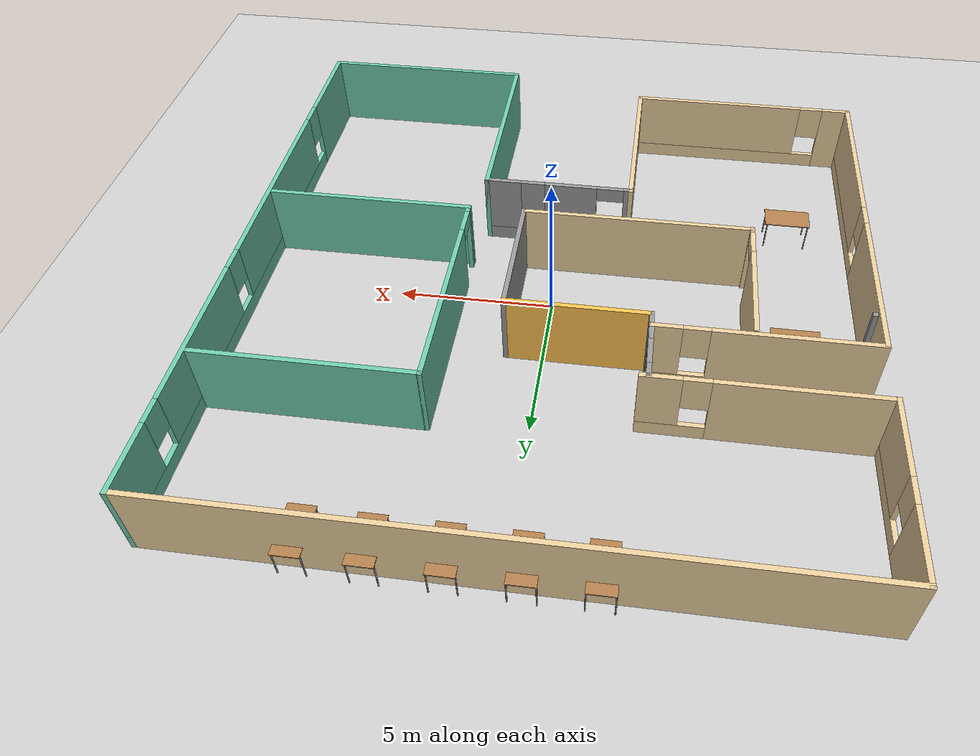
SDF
<sdf version="1.6">
 <world name="default">
  <light name="sun" type="directional">
   <pose>0 0 10 0 -0 0</pose>
   <diffuse>0.8 0.8 0.8 1</diffuse>
   <specular>0.2 0.2 0.2 1</specular>
   <attenuation>
    <range>1000</range>
    <constant>0.9</constant>
    <linear>0.01</linear>
    <quadratic>0.001</quadratic>
   </attenuation>
   <direction>-0.5 0.1 -0.9</direction>
  </light>
  <model name="ground_plane">
   <static>1</static>
   <link name="link">
    <collision name="collision">
     <geometry><plane><normal>0 0 1</normal><size>100 100</size></plane></geometry>
     <surface><friction><ode><mu>100</mu><mu2>50</mu2></ode></friction></surface>
    </collision>
    <visual name="visual">
     <cast_shadows>0</cast_shadows>
     <geometry><plane><normal>0 0 1</normal><size>100 100</size></plane></geometry>
     <material>
      <script><uri>file://media/materials/scripts/gazebo.material</uri><name>Gazebo/Grey</name></script>
     </material>
    </visual>
   </link>
  </model>
  <gravity>0 0 -9.8</gravity>
  <magnetic_field>6e-06 2.3e-05 -4.2e-05</magnetic_field>
  <atmosphere type="adiabatic"/>
  <physics name="default_physics" default="0" type="ode">
   <max_step_size>0.001</max_step_size>
   <real_time_factor>1</real_time_factor>
   <real_time_update_rate>1000</real_time_update_rate>
  </physics>
  <scene><ambient>0.4 0.4 0.4 1</ambient><background>0.7 0.7 0.7 1</background><shadows>1</shadows></scene>
  <spherical_coordinates>
   <surface_model>EARTH_WGS84</surface_model>
   <latitude_deg>0</latitude_deg>
   <longitude_deg>0</longitude_deg>
   <elevation>0</elevation>
   <heading_deg>0</heading_deg>
  </spherical_coordinates>
  <model name="table_clone">
   <static>1</static>
   <link name="link">
    <collision name="surface">
     <pose>0 0 1 0 -0 0</pose>
     <geometry><box><size>1.5 0.8 0.03</size></box></geometry>
     <surface><friction><ode><mu>0.6</mu><mu2>0.6</mu2></ode></friction></surface>
    </collision>
    <visual name="visual1">
     <pose>0 0 1 0 -0 0</pose>
     <geometry><box><size>1.5 0.8 0.03</size></box></geometry>
     <material>
      <script><uri>file://media/materials/scripts/gazebo.material</uri><name>Gazebo/Wood</name></script>
     </material>
    </visual>
    <collision name="front_left_leg">
     <pose>0.68 0.38 0.5 0 -0 0</pose>
     <geometry><cylinder><radius>0.02</radius><length>1</length></cylinder></geometry>
    </collision>
    <visual name="front_left_leg">
     <pose>0.68 0.38 0.5 0 -0 0</pose>
     <geometry><cylinder><radius>0.02</radius><length>1</length></cylinder></geometry>
     <material>
      <script><uri>file://media/materials/scripts/gazebo.material</uri><name>Gazebo/Grey</name></script>
     </material>
    </visual>
    <collision name="front_right_leg">
     <pose>0.68 -0.38 0.5 0 -0 0</pose>
     <geometry><cylinder><radius>0.02</radius><length>1</length></cylinder></geometry>
    </collision>
    <visual name="front_right_leg">
     <pose>0.68 -0.38 0.5 0 -0 0</pose>
     <geometry><cylinder><radius>0.02</radius><length>1</length></cylinder></geometry>
     <material>
      <script><uri>file://media/materials/scripts/gazebo.material</uri><name>Gazebo/Grey</name></script>
     </material>
    </visual>
    <collision name="back_right_leg">
     <pose>-0.68 -0.38 0.5 0 -0 0</pose>
     <geometry><cylinder><radius>0.02</radius><length>1</length></cylinder></geometry>
    </collision>
    <visual name="back_right_leg">
     <pose>-0.68 -0.38 0.5 0 -0 0</pose>
     <geometry><cylinder><radius>0.02</radius><length>1</length></cylinder></geometry>
     <material>
      <script><uri>file://media/materials/scripts/gazebo.material</uri><name>Gazebo/Grey</name></script>
     </material>
    </visual>
    <collision name="back_left_leg">
     <pose>-0.68 0.38 0.5 0 -0 0</pose>
     <geometry><cylinder><radius>0.02</radius><length>1</length></cylinder></geometry>
    </collision>
    <visual name="back_left_leg">
     <pose>-0.68 0.38 0.5 0 -0 0</pose>
     <geometry><cylinder><radius>0.02</radius><length>1</length></cylinder></geometry>
     <material>
      <script><uri>file://media/materials/scripts/gazebo.material</uri><name>Gazebo/Grey</name></script>
     </material>
    </visual>
   </link>
   <pose>5.36982 9.5628 0 0 0 -1.57</pose>
  </model>
  <model name="table_clone_0">
   <static>1</static>
   <link name="link">
    <collision name="surface">
     <pose>0 0 1 0 -0 0</pose>
     <geometry><box><size>1.5 0.8 0.03</size></box></geometry>
     <surface><friction><ode><mu>0.6</mu><mu2>0.6</mu2></ode></friction></surface>
    </collision>
    <visual name="visual1">
     <pose>0 0 1 0 -0 0</pose>
     <geometry><box><size>1.5 0.8 0.03</size></box></geometry>
     <material>
      <script><uri>file://media/materials/scripts/gazebo.material</uri><name>Gazebo/Wood</name></script>
     </material>
    </visual>
    <collision name="front_left_leg">
     <pose>0.68 0.38 0.5 0 -0 0</pose>
     <geometry><cylinder><radius>0.02</radius><length>1</length></cylinder></geometry>
    </collision>
    <visual name="front_left_leg">
     <pose>0.68 0.38 0.5 0 -0 0</pose>
     <geometry><cylinder><radius>0.02</radius><length>1</length></cylinder></geometry>
     <material>
      <script><uri>file://media/materials/scripts/gazebo.material</uri><name>Gazebo/Grey</name></script>
     </material>
    </visual>
    <collision name="front_right_leg">
     <pose>0.68 -0.38 0.5 0 -0 0</pose>
     <geometry><cylinder><radius>0.02</radius><length>1</length></cylinder></geometry>
    </collision>
    <visual name="front_right_leg">
     <pose>0.68 -0.38 0.5 0 -0 0</pose>
     <geometry><cylinder><radius>0.02</radius><length>1</length></cylinder></geometry>
     <material>
      <script><uri>file://media/materials/scripts/gazebo.material</uri><name>Gazebo/Grey</name></script>
     </material>
    </visual>
    <collision name="back_right_leg">
     <pose>-0.68 -0.38 0.5 0 -0 0</pose>
     <geometry><cylinder><radius>0.02</radius><length>1</length></cylinder></geometry>
    </collision>
    <visual name="back_right_leg">
     <pose>-0.68 -0.38 0.5 0 -0 0</pose>
     <geometry><cylinder><radius>0.02</radius><length>1</length></cylinder></geometry>
     <material>
      <script><uri>file://media/materials/scripts/gazebo.material</uri><name>Gazebo/Grey</name></script>
     </material>
    </visual>
    <collision name="back_left_leg">
     <pose>-0.68 0.38 0.5 0 -0 0</pose>
     <geometry><cylinder><radius>0.02</radius><length>1</length></cylinder></geometry>
    </collision>
    <visual name="back_left_leg">
     <pose>-0.68 0.38 0.5 0 -0 0</pose>
     <geometry><cylinder><radius>0.02</radius><length>1</length></cylinder></geometry>
     <material>
      <script><uri>file://media/materials/scripts/gazebo.material</uri><name>Gazebo/Grey</name></script>
     </material>
    </visual>
   </link>
   <pose>3.47417 9.59504 0 0 0 -1.57</pose>
  </model>
  <model name="table_clone_1">
   <static>1</static>
   <link name="link">
    <collision name="surface">
     <pose>0 0 1 0 -0 0</pose>
     <geometry><box><size>1.5 0.8 0.03</size></box></geometry>
     <surface><friction><ode><mu>0.6</mu><mu2>0.6</mu2></ode></friction></surface>
    </collision>
    <visual name="visual1">
     <pose>0 0 1 0 -0 0</pose>
     <geometry><box><size>1.5 0.8 0.03</size></box></geometry>
     <material>
      <script><uri>file://media/materials/scripts/gazebo.material</uri><name>Gazebo/Wood</name></script>
     </material>
    </visual>
    <collision name="front_left_leg">
     <pose>0.68 0.38 0.5 0 -0 0</pose>
     <geometry><cylinder><radius>0.02</radius><length>1</length></cylinder></geometry>
    </collision>
    <visual name="front_left_leg">
     <pose>0.68 0.38 0.5 0 -0 0</pose>
     <geometry><cylinder><radius>0.02</radius><length>1</length></cylinder></geometry>
     <material>
      <script><uri>file://media/materials/scripts/gazebo.material</uri><name>Gazebo/Grey</name></script>
     </material>
    </visual>
    <collision name="front_right_leg">
     <pose>0.68 -0.38 0.5 0 -0 0</pose>
     <geometry><cylinder><radius>0.02</radius><length>1</length></cylinder></geometry>
    </collision>
    <visual name="front_right_leg">
     <pose>0.68 -0.38 0.5 0 -0 0</pose>
     <geometry><cylinder><radius>0.02</radius><length>1</length></cylinder></geometry>
     <material>
      <script><uri>file://media/materials/scripts/gazebo.material</uri><name>Gazebo/Grey</name></script>
     </material>
    </visual>
    <collision name="back_right_leg">
     <pose>-0.68 -0.38 0.5 0 -0 0</pose>
     <geometry><cylinder><radius>0.02</radius><length>1</length></cylinder></geometry>
    </collision>
    <visual name="back_right_leg">
     <pose>-0.68 -0.38 0.5 0 -0 0</pose>
     <geometry><cylinder><radius>0.02</radius><length>1</length></cylinder></geometry>
     <material>
      <script><uri>file://media/materials/scripts/gazebo.material</uri><name>Gazebo/Grey</name></script>
     </material>
    </visual>
    <collision name="back_left_leg">
     <pose>-0.68 0.38 0.5 0 -0 0</pose>
     <geometry><cylinder><radius>0.02</radius><length>1</length></cylinder></geometry>
    </collision>
    <visual name="back_left_leg">
     <pose>-0.68 0.38 0.5 0 -0 0</pose>
     <geometry><cylinder><radius>0.02</radius><length>1</length></cylinder></geometry>
     <material>
      <script><uri>file://media/materials/scripts/gazebo.material</uri><name>Gazebo/Grey</name></script>
     </material>
    </visual>
   </link>
   <pose>1.43565 9.59938 0 0 0 -1.57</pose>
  </model>
  <model name="table_clone_2">
   <static>1</static>
   <link name="link">
    <collision name="surface">
     <pose>0 0 1 0 -0 0</pose>
     <geometry><box><size>1.5 0.8 0.03</size></box></geometry>
     <surface><friction><ode><mu>0.6</mu><mu2>0.6</mu2></ode></friction></surface>
    </collision>
    <visual name="visual1">
     <pose>0 0 1 0 -0 0</pose>
     <geometry><box><size>1.5 0.8 0.03</size></box></geometry>
     <material>
      <script><uri>file://media/materials/scripts/gazebo.material</uri><name>Gazebo/Wood</name></script>
     </material>
    </visual>
    <collision name="front_left_leg">
     <pose>0.68 0.38 0.5 0 -0 0</pose>
     <geometry><cylinder><radius>0.02</radius><length>1</length></cylinder></geometry>
    </collision>
    <visual name="front_left_leg">
     <pose>0.68 0.38 0.5 0 -0 0</pose>
     <geometry><cylinder><radius>0.02</radius><length>1</length></cylinder></geometry>
     <material>
      <script><uri>file://media/materials/scripts/gazebo.material</uri><name>Gazebo/Grey</name></script>
     </material>
    </visual>
    <collision name="front_right_leg">
     <pose>0.68 -0.38 0.5 0 -0 0</pose>
     <geometry><cylinder><radius>0.02</radius><length>1</length></cylinder></geometry>
    </collision>
    <visual name="front_right_leg">
     <pose>0.68 -0.38 0.5 0 -0 0</pose>
     <geometry><cylinder><radius>0.02</radius><length>1</length></cylinder></geometry>
     <material>
      <script><uri>file://media/materials/scripts/gazebo.material</uri><name>Gazebo/Grey</name></script>
     </material>
    </visual>
    <collision name="back_right_leg">
     <pose>-0.68 -0.38 0.5 0 -0 0</pose>
     <geometry><cylinder><radius>0.02</radius><length>1</length></cylinder></geometry>
    </collision>
    <visual name="back_right_leg">
     <pose>-0.68 -0.38 0.5 0 -0 0</pose>
     <geometry><cylinder><radius>0.02</radius><length>1</length></cylinder></geometry>
     <material>
      <script><uri>file://media/materials/scripts/gazebo.material</uri><name>Gazebo/Grey</name></script>
     </material>
    </visual>
    <collision name="back_left_leg">
     <pose>-0.68 0.38 0.5 0 -0 0</pose>
     <geometry><cylinder><radius>0.02</radius><length>1</length></cylinder></geometry>
    </collision>
    <visual name="back_left_leg">
     <pose>-0.68 0.38 0.5 0 -0 0</pose>
     <geometry><cylinder><radius>0.02</radius><length>1</length></cylinder></geometry>
     <material>
      <script><uri>file://media/materials/scripts/gazebo.material</uri><name>Gazebo/Grey</name></script>
     </material>
    </visual>
   </link>
   <pose>-0.563458 9.59911 0 0 0 -1.57</pose>
  </model>
  <model name="table_clone_3">
   <static>1</static>
   <link name="link">
    <collision name="surface">
     <pose>0 0 1 0 -0 0</pose>
     <geometry><box><size>1.5 0.8 0.03</size></box></geometry>
     <surface><friction><ode><mu>0.6</mu><mu2>0.6</mu2></ode></friction></surface>
    </collision>
    <visual name="visual1">
     <pose>0 0 1 0 -0 0</pose>
     <geometry><box><size>1.5 0.8 0.03</size></box></geometry>
     <material>
      <script><uri>file://media/materials/scripts/gazebo.material</uri><name>Gazebo/Wood</name></script>
     </material>
    </visual>
    <collision name="front_left_leg">
     <pose>0.68 0.38 0.5 0 -0 0</pose>
     <geometry><cylinder><radius>0.02</radius><length>1</length></cylinder></geometry>
    </collision>
    <visual name="front_left_leg">
     <pose>0.68 0.38 0.5 0 -0 0</pose>
     <geometry><cylinder><radius>0.02</radius><length>1</length></cylinder></geometry>
     <material>
      <script><uri>file://media/materials/scripts/gazebo.material</uri><name>Gazebo/Grey</name></script>
     </material>
    </visual>
    <collision name="front_right_leg">
     <pose>0.68 -0.38 0.5 0 -0 0</pose>
     <geometry><cylinder><radius>0.02</radius><length>1</length></cylinder></geometry>
    </collision>
    <visual name="front_right_leg">
     <pose>0.68 -0.38 0.5 0 -0 0</pose>
     <geometry><cylinder><radius>0.02</radius><length>1</length></cylinder></geometry>
     <material>
      <script><uri>file://media/materials/scripts/gazebo.material</uri><name>Gazebo/Grey</name></script>
     </material>
    </visual>
    <collision name="back_right_leg">
     <pose>-0.68 -0.38 0.5 0 -0 0</pose>
     <geometry><cylinder><radius>0.02</radius><length>1</length></cylinder></geometry>
    </collision>
    <visual name="back_right_leg">
     <pose>-0.68 -0.38 0.5 0 -0 0</pose>
     <geometry><cylinder><radius>0.02</radius><length>1</length></cylinder></geometry>
     <material>
      <script><uri>file://media/materials/scripts/gazebo.material</uri><name>Gazebo/Grey</name></script>
     </material>
    </visual>
    <collision name="back_left_leg">
     <pose>-0.68 0.38 0.5 0 -0 0</pose>
     <geometry><cylinder><radius>0.02</radius><length>1</length></cylinder></geometry>
    </collision>
    <visual name="back_left_leg">
     <pose>-0.68 0.38 0.5 0 -0 0</pose>
     <geometry><cylinder><radius>0.02</radius><length>1</length></cylinder></geometry>
     <material>
      <script><uri>file://media/materials/scripts/gazebo.material</uri><name>Gazebo/Grey</name></script>
     </material>
    </visual>
   </link>
   <pose>-2.5236 9.5957 0 0 0 -1.57</pose>
  </model>
  <model name="table">
   <static>1</static>
   <link name="link">
    <collision name="surface">
     <pose>0 0 1 0 -0 0</pose>
     <geometry><box><size>1.5 0.8 0.03</size></box></geometry>
     <surface><friction><ode><mu>0.6</mu><mu2>0.6</mu2></ode></friction></surface>
    </collision>
    <visual name="visual1">
     <pose>0 0 1 0 -0 0</pose>
     <geometry><box><size>1.5 0.8 0.03</size></box></geometry>
     <material>
      <script><uri>file://media/materials/scripts/gazebo.material</uri><name>Gazebo/Wood</name></script>
     </material>
    </visual>
    <collision name="front_left_leg">
     <pose>0.68 0.38 0.5 0 -0 0</pose>
     <geometry><cylinder><radius>0.02</radius><length>1</length></cylinder></geometry>
    </collision>
    <visual name="front_left_leg">
     <pose>0.68 0.38 0.5 0 -0 0</pose>
     <geometry><cylinder><radius>0.02</radius><length>1</length></cylinder></geometry>
     <material>
      <script><uri>file://media/materials/scripts/gazebo.material</uri><name>Gazebo/Grey</name></script>
     </material>
    </visual>
    <collision name="front_right_leg">
     <pose>0.68 -0.38 0.5 0 -0 0</pose>
     <geometry><cylinder><radius>0.02</radius><length>1</length></cylinder></geometry>
    </collision>
    <visual name="front_right_leg">
     <pose>0.68 -0.38 0.5 0 -0 0</pose>
     <geometry><cylinder><radius>0.02</radius><length>1</length></cylinder></geometry>
     <material>
      <script><uri>file://media/materials/scripts/gazebo.material</uri><name>Gazebo/Grey</name></script>
     </material>
    </visual>
    <collision name="back_right_leg">
     <pose>-0.68 -0.38 0.5 0 -0 0</pose>
     <geometry><cylinder><radius>0.02</radius><length>1</length></cylinder></geometry>
    </collision>
    <visual name="back_right_leg">
     <pose>-0.68 -0.38 0.5 0 -0 0</pose>
     <geometry><cylinder><radius>0.02</radius><length>1</length></cylinder></geometry>
     <material>
      <script><uri>file://media/materials/scripts/gazebo.material</uri><name>Gazebo/Grey</name></script>
     </material>
    </visual>
    <collision name="back_left_leg">
     <pose>-0.68 0.38 0.5 0 -0 0</pose>
     <geometry><cylinder><radius>0.02</radius><length>1</length></cylinder></geometry>
    </collision>
    <visual name="back_left_leg">
     <pose>-0.68 0.38 0.5 0 -0 0</pose>
     <geometry><cylinder><radius>0.02</radius><length>1</length></cylinder></geometry>
     <material>
      <script><uri>file://media/materials/scripts/gazebo.material</uri><name>Gazebo/Grey</name></script>
     </material>
    </visual>
   </link>
   <pose>-7.63732 1.38708 0 0 -0 0</pose>
  </model>
  <model name="table_clone_9">
   <static>1</static>
   <link name="link">
    <collision name="surface">
     <pose>0 0 1 0 -0 0</pose>
     <geometry><box><size>1.5 0.8 0.03</size></box></geometry>
     <surface><friction><ode><mu>0.6</mu><mu2>0.6</mu2></ode></friction></surface>
    </collision>
    <visual name="visual1">
     <pose>0 0 1 0 -0 0</pose>
     <geometry><box><size>1.5 0.8 0.03</size></box></geometry>
     <material>
      <script><uri>file://media/materials/scripts/gazebo.material</uri><name>Gazebo/Wood</name></script>
     </material>
    </visual>
    <collision name="front_left_leg">
     <pose>0.68 0.38 0.5 0 -0 0</pose>
     <geometry><cylinder><radius>0.02</radius><length>1</length></cylinder></geometry>
    </collision>
    <visual name="front_left_leg">
     <pose>0.68 0.38 0.5 0 -0 0</pose>
     <geometry><cylinder><radius>0.02</radius><length>1</length></cylinder></geometry>
     <material>
      <script><uri>file://media/materials/scripts/gazebo.material</uri><name>Gazebo/Grey</name></script>
     </material>
    </visual>
    <collision name="front_right_leg">
     <pose>0.68 -0.38 0.5 0 -0 0</pose>
     <geometry><cylinder><radius>0.02</radius><length>1</length></cylinder></geometry>
    </collision>
    <visual name="front_right_leg">
     <pose>0.68 -0.38 0.5 0 -0 0</pose>
     <geometry><cylinder><radius>0.02</radius><length>1</length></cylinder></geometry>
     <material>
      <script><uri>file://media/materials/scripts/gazebo.material</uri><name>Gazebo/Grey</name></script>
     </material>
    </visual>
    <collision name="back_right_leg">
     <pose>-0.68 -0.38 0.5 0 -0 0</pose>
     <geometry><cylinder><radius>0.02</radius><length>1</length></cylinder></geometry>
    </collision>
    <visual name="back_right_leg">
     <pose>-0.68 -0.38 0.5 0 -0 0</pose>
     <geometry><cylinder><radius>0.02</radius><length>1</length></cylinder></geometry>
     <material>
      <script><uri>file://media/materials/scripts/gazebo.material</uri><name>Gazebo/Grey</name></script>
     </material>
    </visual>
    <collision name="back_left_leg">
     <pose>-0.68 0.38 0.5 0 -0 0</pose>
     <geometry><cylinder><radius>0.02</radius><length>1</length></cylinder></geometry>
    </collision>
    <visual name="back_left_leg">
     <pose>-0.68 0.38 0.5 0 -0 0</pose>
     <geometry><cylinder><radius>0.02</radius><length>1</length></cylinder></geometry>
     <material>
      <script><uri>file://media/materials/scripts/gazebo.material</uri><name>Gazebo/Grey</name></script>
     </material>
    </visual>
   </link>
   <pose>-7.68096 -4.30939 0 0 -0 0</pose>
  </model>
  <plugin name="collision_map_creator" filename="libcollision_map_creator.so"/>
  <model name="my_new_world.world">
   <pose>-0.097438 0.021608 0 0 -0 0</pose>
   <link name="Wall_10">
    <pose>-9.8 7.25 0 0 0 -1.5708</pose>
    <visual name="Wall_10_Visual_0">
     <pose>-1.64644 0 1.25 0 -0 0</pose>
     <geometry><box><size>2.20712 0.15 2.5</size></box></geometry>
     <material>
      <script><uri>file://media/materials/scripts/gazebo.material</uri><name>Gazebo/Grey</name></script>
      <ambient>0.921569 0.807843 0.615686 1</ambient>
     </material>
     <meta><layer>0</layer></meta>
    </visual>
    <collision name="Wall_10_Collision_0">
     <geometry><box><size>2.20712 0.15 2.5</size></box></geometry>
     <pose>-1.64644 0 1.25 0 -0 0</pose>
    </collision>
    <visual name="Wall_10_Visual_1">
     <pose>1.10356 0 0.25 0 -0 0</pose>
     <geometry><box><size>3.29288 0.15 0.5</size></box></geometry>
     <material>
      <script><uri>file://media/materials/scripts/gazebo.material</uri><name>Gazebo/Grey</name></script>
      <ambient>0.921569 0.807843 0.615686 1</ambient>
     </material>
     <meta><layer>0</layer></meta>
    </visual>
    <collision name="Wall_10_Collision_1">
     <geometry><box><size>3.29288 0.15 0.5</size></box></geometry>
     <pose>1.10356 0 0.25 0 -0 0</pose>
    </collision>
    <visual name="Wall_10_Visual_2">
     <pose>1.50356 0 1.5 0 -0 0</pose>
     <geometry><box><size>2.49288 0.15 2</size></box></geometry>
     <material>
      <script><uri>file://media/materials/scripts/gazebo.material</uri><name>Gazebo/Grey</name></script>
      <ambient>0.921569 0.807843 0.615686 1</ambient>
     </material>
     <meta><layer>0</layer></meta>
    </visual>
    <collision name="Wall_10_Collision_2">
     <geometry><box><size>2.49288 0.15 2</size></box></geometry>
     <pose>1.50356 0 1.5 0 -0 0</pose>
    </collision>
    <visual name="Wall_10_Visual_3">
     <pose>-0.14288 0 1.9 0 -0 0</pose>
     <geometry><box><size>0.8 0.15 1.2</size></box></geometry>
     <material>
      <script><uri>file://media/materials/scripts/gazebo.material</uri><name>Gazebo/Grey</name></script>
      <ambient>0.921569 0.807843 0.615686 1</ambient>
     </material>
     <meta><layer>0</layer></meta>
    </visual>
    <collision name="Wall_10_Collision_3">
     <geometry><box><size>0.8 0.15 1.2</size></box></geometry>
     <pose>-0.14288 0 1.9 0 -0 0</pose>
    </collision>
   </link>
   <link name="Wall_11">
    <pose>-6.375 4.575 0 0 -0 0</pose>
    <visual name="Wall_11_Visual_0">
     <pose>-1.0089 0 1.25 0 -0 0</pose>
     <geometry><box><size>4.9822 0.15 2.5</size></box></geometry>
     <material>
      <script><uri>file://media/materials/scripts/gazebo.material</uri><name>Gazebo/Grey</name></script>
      <ambient>0.921569 0.807843 0.615686 1</ambient>
     </material>
     <meta><layer>0</layer></meta>
    </visual>
    <collision name="Wall_11_Collision_0">
     <geometry><box><size>4.9822 0.15 2.5</size></box></geometry>
     <pose>-1.0089 0 1.25 0 -0 0</pose>
    </collision>
    <visual name="Wall_11_Visual_1">
     <pose>2.4911 0 0.25 0 -0 0</pose>
     <geometry><box><size>2.0178 0.15 0.5</size></box></geometry>
     <material>
      <script><uri>file://media/materials/scripts/gazebo.material</uri><name>Gazebo/Grey</name></script>
      <ambient>0.921569 0.807843 0.615686 1</ambient>
     </material>
     <meta><layer>0</layer></meta>
    </visual>
    <collision name="Wall_11_Collision_1">
     <geometry><box><size>2.0178 0.15 0.5</size></box></geometry>
     <pose>2.4911 0 0.25 0 -0 0</pose>
    </collision>
    <visual name="Wall_11_Visual_2">
     <pose>2.8911 0 1.5 0 -0 0</pose>
     <geometry><box><size>1.2178 0.15 2</size></box></geometry>
     <material>
      <script><uri>file://media/materials/scripts/gazebo.material</uri><name>Gazebo/Grey</name></script>
      <ambient>0.921569 0.807843 0.615686 1</ambient>
     </material>
     <meta><layer>0</layer></meta>
    </visual>
    <collision name="Wall_11_Collision_2">
     <geometry><box><size>1.2178 0.15 2</size></box></geometry>
     <pose>2.8911 0 1.5 0 -0 0</pose>
    </collision>
    <visual name="Wall_11_Visual_3">
     <pose>1.8822 0 1.9 0 -0 0</pose>
     <geometry><box><size>0.8 0.15 1.2</size></box></geometry>
     <material>
      <script><uri>file://media/materials/scripts/gazebo.material</uri><name>Gazebo/Grey</name></script>
      <ambient>0.921569 0.807843 0.615686 1</ambient>
     </material>
     <meta><layer>0</layer></meta>
    </visual>
    <collision name="Wall_11_Collision_3">
     <geometry><box><size>0.8 0.15 1.2</size></box></geometry>
     <pose>1.8822 0 1.9 0 -0 0</pose>
    </collision>
   </link>
   <link name="Wall_14">
    <collision name="Wall_14_Collision">
     <geometry><box><size>0.15 0.15 2.5</size></box></geometry>
     <pose>0 0 1.25 0 -0 0</pose>
    </collision>
    <visual name="Wall_14_Visual">
     <pose>0 0 1.25 0 -0 0</pose>
     <geometry><box><size>0.15 0.15 2.5</size></box></geometry>
     <material>
      <script><uri>file://media/materials/scripts/gazebo.material</uri><name>Gazebo/Grey</name></script>
      <ambient>1 1 1 1</ambient>
     </material>
     <meta><layer>0</layer></meta>
    </visual>
    <pose>-9.55 1.475 0 0 -0 0</pose>
   </link>
   <link name="Wall_19">
    <pose>-6.45 2.675 0 0 -0 0</pose>
    <visual name="Wall_19_Visual_0">
     <pose>-0.885637 0 1.25 0 -0 0</pose>
     <geometry><box><size>4.97873 0.15 2.5</size></box></geometry>
     <material>
      <script><uri>file://media/materials/scripts/gazebo.material</uri><name>Gazebo/Grey</name></script>
      <ambient>0.921569 0.807843 0.615686 1</ambient>
     </material>
     <meta><layer>0</layer></meta>
    </visual>
    <collision name="Wall_19_Collision_0">
     <geometry><box><size>4.97873 0.15 2.5</size></box></geometry>
     <pose>-0.885637 0 1.25 0 -0 0</pose>
    </collision>
    <visual name="Wall_19_Visual_1">
     <pose>2.48936 0 0.25 0 -0 0</pose>
     <geometry><box><size>1.77127 0.15 0.5</size></box></geometry>
     <material>
      <script><uri>file://media/materials/scripts/gazebo.material</uri><name>Gazebo/Grey</name></script>
      <ambient>0.921569 0.807843 0.615686 1</ambient>
     </material>
     <meta><layer>0</layer></meta>
    </visual>
    <collision name="Wall_19_Collision_1">
     <geometry><box><size>1.77127 0.15 0.5</size></box></geometry>
     <pose>2.48936 0 0.25 0 -0 0</pose>
    </collision>
    <visual name="Wall_19_Visual_2">
     <pose>2.88936 0 1.5 0 -0 0</pose>
     <geometry><box><size>0.971274 0.15 2</size></box></geometry>
     <material>
      <script><uri>file://media/materials/scripts/gazebo.material</uri><name>Gazebo/Grey</name></script>
      <ambient>0.921569 0.807843 0.615686 1</ambient>
     </material>
     <meta><layer>0</layer></meta>
    </visual>
    <collision name="Wall_19_Collision_2">
     <geometry><box><size>0.971274 0.15 2</size></box></geometry>
     <pose>2.88936 0 1.5 0 -0 0</pose>
    </collision>
    <visual name="Wall_19_Visual_3">
     <pose>2.00373 0 1.9 0 -0 0</pose>
     <geometry><box><size>0.8 0.15 1.2</size></box></geometry>
     <material>
      <script><uri>file://media/materials/scripts/gazebo.material</uri><name>Gazebo/Grey</name></script>
      <ambient>0.921569 0.807843 0.615686 1</ambient>
     </material>
     <meta><layer>0</layer></meta>
    </visual>
    <collision name="Wall_19_Collision_3">
     <geometry><box><size>0.8 0.15 1.2</size></box></geometry>
     <pose>2.00373 0 1.9 0 -0 0</pose>
    </collision>
   </link>
   <link name="Wall_2">
    <pose>-9.75 -3.125 0 0 0 -1.5708</pose>
    <visual name="Wall_2_Visual_0">
     <pose>-3.18576 0 1.25 0 -0 0</pose>
     <geometry><box><size>5.37848 0.15 2.5</size></box></geometry>
     <material>
      <script><uri>file://media/materials/scripts/gazebo.material</uri><name>Gazebo/Grey</name></script>
      <ambient>0.921569 0.807843 0.615686 1</ambient>
     </material>
     <meta><layer>0</layer></meta>
    </visual>
    <collision name="Wall_2_Collision_0">
     <geometry><box><size>5.37848 0.15 2.5</size></box></geometry>
     <pose>-3.18576 0 1.25 0 -0 0</pose>
    </collision>
    <visual name="Wall_2_Visual_1">
     <pose>2.68924 0 0.25 0 -0 0</pose>
     <geometry><box><size>6.37152 0.15 0.5</size></box></geometry>
     <material>
      <script><uri>file://media/materials/scripts/gazebo.material</uri><name>Gazebo/Grey</name></script>
      <ambient>0.921569 0.807843 0.615686 1</ambient>
     </material>
     <meta><layer>0</layer></meta>
    </visual>
    <collision name="Wall_2_Collision_1">
     <geometry><box><size>6.37152 0.15 0.5</size></box></geometry>
     <pose>2.68924 0 0.25 0 -0 0</pose>
    </collision>
    <visual name="Wall_2_Visual_2">
     <pose>3.08924 0 1.5 0 -0 0</pose>
     <geometry><box><size>5.57152 0.15 2</size></box></geometry>
     <material>
      <script><uri>file://media/materials/scripts/gazebo.material</uri><name>Gazebo/Grey</name></script>
      <ambient>0.921569 0.807843 0.615686 1</ambient>
     </material>
     <meta><layer>0</layer></meta>
    </visual>
    <collision name="Wall_2_Collision_2">
     <geometry><box><size>5.57152 0.15 2</size></box></geometry>
     <pose>3.08924 0 1.5 0 -0 0</pose>
    </collision>
    <visual name="Wall_2_Visual_3">
     <pose>-0.096524 0 1.9 0 -0 0</pose>
     <geometry><box><size>0.8 0.15 1.2</size></box></geometry>
     <material>
      <script><uri>file://media/materials/scripts/gazebo.material</uri><name>Gazebo/Grey</name></script>
      <ambient>0.921569 0.807843 0.615686 1</ambient>
     </material>
     <meta><layer>0</layer></meta>
    </visual>
    <collision name="Wall_2_Collision_3">
     <geometry><box><size>0.8 0.15 1.2</size></box></geometry>
     <pose>-0.096524 0 1.9 0 -0 0</pose>
    </collision>
   </link>
   <link name="Wall_20">
    <pose>-3.15 3.6 0 0 -0 1.5708</pose>
    <visual name="Wall_20_Visual_0">
     <pose>-0.689516 0 1.25 0 -0 0</pose>
     <geometry><box><size>0.620967 0.15 2.5</size></box></geometry>
     <material>
      <script><uri>file://media/materials/scripts/gazebo.material</uri><name>Gazebo/Grey</name></script>
      <ambient>1 1 1 1</ambient>
     </material>
     <meta><layer>0</layer></meta>
    </visual>
    <collision name="Wall_20_Collision_0">
     <geometry><box><size>0.620967 0.15 2.5</size></box></geometry>
     <pose>-0.689516 0 1.25 0 -0 0</pose>
    </collision>
    <visual name="Wall_20_Visual_1">
     <pose>0.760484 0 1.25 0 -0 0</pose>
     <geometry><box><size>0.479033 0.15 2.5</size></box></geometry>
     <material>
      <script><uri>file://media/materials/scripts/gazebo.material</uri><name>Gazebo/Grey</name></script>
      <ambient>1 1 1 1</ambient>
     </material>
     <meta><layer>0</layer></meta>
    </visual>
    <collision name="Wall_20_Collision_1">
     <geometry><box><size>0.479033 0.15 2.5</size></box></geometry>
     <pose>0.760484 0 1.25 0 -0 0</pose>
    </collision>
    <visual name="Wall_20_Visual_2">
     <pose>0.070967 0 2.25 0 -0 0</pose>
     <geometry><box><size>0.9 0.15 0.5</size></box></geometry>
     <material>
      <script><uri>file://media/materials/scripts/gazebo.material</uri><name>Gazebo/Grey</name></script>
      <ambient>1 1 1 1</ambient>
     </material>
     <meta><layer>0</layer></meta>
    </visual>
    <collision name="Wall_20_Collision_2">
     <geometry><box><size>0.9 0.15 0.5</size></box></geometry>
     <pose>0.070967 0 2.25 0 -0 0</pose>
    </collision>
   </link>
   <link name="Wall_22">
    <collision name="Wall_22_Collision">
     <geometry><box><size>7.5 0.15 2.5</size></box></geometry>
     <pose>0 0 1.25 0 -0 0</pose>
    </collision>
    <visual name="Wall_22_Visual">
     <pose>0 0 1.25 0 -0 0</pose>
     <geometry><box><size>7.5 0.15 2.5</size></box></geometry>
     <material>
      <script><uri>file://media/materials/scripts/gazebo.material</uri><name>Gazebo/Grey</name></script>
      <ambient>0.921569 0.807843 0.615686 1</ambient>
     </material>
     <meta><layer>0</layer></meta>
    </visual>
    <pose>-2.44536 -1.86538 0 0 -0 3.14159</pose>
   </link>
   <link name="Wall_23">
    <pose>-6.12036 0.309622 0 0 -0 1.5708</pose>
    <visual name="Wall_23_Visual_0">
     <pose>-2.1351 0 1.25 0 -0 0</pose>
     <geometry><box><size>0.229811 0.15 2.5</size></box></geometry>
     <material>
      <script><uri>file://media/materials/scripts/gazebo.material</uri><name>Gazebo/Grey</name></script>
      <ambient>0.921569 0.807843 0.615686 1</ambient>
     </material>
     <meta><layer>0</layer></meta>
    </visual>
    <collision name="Wall_23_Collision_0">
     <geometry><box><size>0.229811 0.15 2.5</size></box></geometry>
     <pose>-2.1351 0 1.25 0 -0 0</pose>
    </collision>
    <visual name="Wall_23_Visual_1">
     <pose>0.564905 0 1.25 0 -0 0</pose>
     <geometry><box><size>3.37019 0.15 2.5</size></box></geometry>
     <material>
      <script><uri>file://media/materials/scripts/gazebo.material</uri><name>Gazebo/Grey</name></script>
      <ambient>0.921569 0.807843 0.615686 1</ambient>
     </material>
     <meta><layer>0</layer></meta>
    </visual>
    <collision name="Wall_23_Collision_1">
     <geometry><box><size>3.37019 0.15 2.5</size></box></geometry>
     <pose>0.564905 0 1.25 0 -0 0</pose>
    </collision>
    <visual name="Wall_23_Visual_2">
     <pose>-1.57019 0 2.25 0 -0 0</pose>
     <geometry><box><size>0.9 0.15 0.5</size></box></geometry>
     <material>
      <script><uri>file://media/materials/scripts/gazebo.material</uri><name>Gazebo/Grey</name></script>
      <ambient>0.921569 0.807843 0.615686 1</ambient>
     </material>
     <meta><layer>0</layer></meta>
    </visual>
    <collision name="Wall_23_Collision_2">
     <geometry><box><size>0.9 0.15 0.5</size></box></geometry>
     <pose>-1.57019 0 2.25 0 -0 0</pose>
    </collision>
   </link>
   <link name="Wall_25">
    <collision name="Wall_25_Collision">
     <geometry><box><size>4.25 0.15 2.5</size></box></geometry>
     <pose>0 0 1.25 0 -0 0</pose>
    </collision>
    <visual name="Wall_25_Visual">
     <pose>0 0 1.25 0 -0 0</pose>
     <geometry><box><size>4.25 0.15 2.5</size></box></geometry>
     <material>
      <script><uri>file://media/materials/scripts/gazebo.material</uri><name>Gazebo/Grey</name></script>
      <ambient>1 1 1 1</ambient>
     </material>
     <meta><layer>0</layer></meta>
    </visual>
    <pose>1.22964 0.184622 0 0 -0 1.5708</pose>
   </link>
   <link name="Wall_27">
    <collision name="Wall_27_Collision">
     <geometry><box><size>4.5 0.15 2.5</size></box></geometry>
     <pose>0 0 1.25 0 -0 0</pose>
    </collision>
    <visual name="Wall_27_Visual">
     <pose>0 0 1.25 0 -0 0</pose>
     <geometry><box><size>4.5 0.15 2.5</size></box></geometry>
     <material>
      <script><uri>file://media/materials/scripts/gazebo.material</uri><name>Gazebo/Grey</name></script>
      <ambient>1 0.764706 0.305882 1</ambient>
     </material>
     <meta><layer>0</layer></meta>
    </visual>
    <pose>-0.945357 2.23462 0 0 -0 3.14159</pose>
   </link>
   <link name="Wall_28">
    <collision name="Wall_28_Collision">
     <geometry><box><size>0.591375 0.15 2.5</size></box></geometry>
     <pose>0 0 1.25 0 -0 0</pose>
    </collision>
    <visual name="Wall_28_Visual">
     <pose>0 0 1.25 0 -0 0</pose>
     <geometry><box><size>0.591375 0.15 2.5</size></box></geometry>
     <material>
      <script><uri>file://media/materials/scripts/gazebo.material</uri><name>Gazebo/Grey</name></script>
      <ambient>1 1 1 1</ambient>
     </material>
     <meta><layer>0</layer></meta>
    </visual>
    <pose>-3.13518 2.45481 0 0 -0 1.63801</pose>
   </link>
   <link name="Wall_3">
    <pose>-5.95 -8.925 0 0 -0 0</pose>
    <visual name="Wall_3_Visual_0">
     <pose>-3.38617 0 1.25 0 -0 0</pose>
     <geometry><box><size>0.97767 0.15 2.5</size></box></geometry>
     <material>
      <script><uri>file://media/materials/scripts/gazebo.material</uri><name>Gazebo/Grey</name></script>
      <ambient>0.921569 0.807843 0.615686 1</ambient>
     </material>
     <meta><layer>0</layer></meta>
    </visual>
    <collision name="Wall_3_Collision_0">
     <geometry><box><size>0.97767 0.15 2.5</size></box></geometry>
     <pose>-3.38617 0 1.25 0 -0 0</pose>
    </collision>
    <visual name="Wall_3_Visual_1">
     <pose>0.488835 0 0.25 0 -0 0</pose>
     <geometry><box><size>6.77233 0.15 0.5</size></box></geometry>
     <material>
      <script><uri>file://media/materials/scripts/gazebo.material</uri><name>Gazebo/Grey</name></script>
      <ambient>0.921569 0.807843 0.615686 1</ambient>
     </material>
     <meta><layer>0</layer></meta>
    </visual>
    <collision name="Wall_3_Collision_1">
     <geometry><box><size>6.77233 0.15 0.5</size></box></geometry>
     <pose>0.488835 0 0.25 0 -0 0</pose>
    </collision>
    <visual name="Wall_3_Visual_2">
     <pose>0.888835 0 1.5 0 -0 0</pose>
     <geometry><box><size>5.97233 0.15 2</size></box></geometry>
     <material>
      <script><uri>file://media/materials/scripts/gazebo.material</uri><name>Gazebo/Grey</name></script>
      <ambient>0.921569 0.807843 0.615686 1</ambient>
     </material>
     <meta><layer>0</layer></meta>
    </visual>
    <collision name="Wall_3_Collision_2">
     <geometry><box><size>5.97233 0.15 2</size></box></geometry>
     <pose>0.888835 0 1.5 0 -0 0</pose>
    </collision>
    <visual name="Wall_3_Visual_3">
     <pose>-2.49733 0 1.9 0 -0 0</pose>
     <geometry><box><size>0.8 0.15 1.2</size></box></geometry>
     <material>
      <script><uri>file://media/materials/scripts/gazebo.material</uri><name>Gazebo/Grey</name></script>
      <ambient>0.921569 0.807843 0.615686 1</ambient>
     </material>
     <meta><layer>0</layer></meta>
    </visual>
    <collision name="Wall_3_Collision_3">
     <geometry><box><size>0.8 0.15 1.2</size></box></geometry>
     <pose>-2.49733 0 1.9 0 -0 0</pose>
    </collision>
   </link>
   <link name="Wall_30">
    <pose>3.04408 1.73115 0 0 -0 1.5708</pose>
    <visual name="Wall_30_Visual_0">
     <pose>-3.46357 0 1.25 0 -0 0</pose>
     <geometry><box><size>0.322859 0.15 2.5</size></box></geometry>
     <material>
      <script><uri>file://media/materials/scripts/gazebo.material</uri><name>Gazebo/Grey</name></script>
      <ambient>0.435294 0.796078 0.67451 1</ambient>
     </material>
     <meta><layer>0</layer></meta>
    </visual>
    <collision name="Wall_30_Collision_0">
     <geometry><box><size>0.322859 0.15 2.5</size></box></geometry>
     <pose>-3.46357 0 1.25 0 -0 0</pose>
    </collision>
    <visual name="Wall_30_Visual_1">
     <pose>0.611429 0 1.25 0 -0 0</pose>
     <geometry><box><size>6.02714 0.15 2.5</size></box></geometry>
     <material>
      <script><uri>file://media/materials/scripts/gazebo.material</uri><name>Gazebo/Grey</name></script>
      <ambient>0.435294 0.796078 0.67451 1</ambient>
     </material>
     <meta><layer>0</layer></meta>
    </visual>
    <collision name="Wall_30_Collision_1">
     <geometry><box><size>6.02714 0.15 2.5</size></box></geometry>
     <pose>0.611429 0 1.25 0 -0 0</pose>
    </collision>
    <visual name="Wall_30_Visual_2">
     <pose>-2.85214 0 2.25 0 -0 0</pose>
     <geometry><box><size>0.9 0.15 0.5</size></box></geometry>
     <material>
      <script><uri>file://media/materials/scripts/gazebo.material</uri><name>Gazebo/Grey</name></script>
      <ambient>0.435294 0.796078 0.67451 1</ambient>
     </material>
     <meta><layer>0</layer></meta>
    </visual>
    <collision name="Wall_30_Collision_2">
     <geometry><box><size>0.9 0.15 0.5</size></box></geometry>
     <pose>-2.85214 0 2.25 0 -0 0</pose>
    </collision>
   </link>
   <link name="Wall_31">
    <collision name="Wall_31_Collision">
     <geometry><box><size>6.75 0.15 2.5</size></box></geometry>
     <pose>0 0 1.25 0 -0 0</pose>
    </collision>
    <visual name="Wall_31_Visual">
     <pose>0 0 1.25 0 -0 0</pose>
     <geometry><box><size>6.75 0.15 2.5</size></box></geometry>
     <material>
      <script><uri>file://media/materials/scripts/gazebo.material</uri><name>Gazebo/Grey</name></script>
      <ambient>0.435294 0.796078 0.67451 1</ambient>
     </material>
     <meta><layer>0</layer></meta>
    </visual>
    <pose>6.34408 5.28115 0 0 -0 0</pose>
   </link>
   <link name="Wall_33">
    <collision name="Wall_33_Collision">
     <geometry><box><size>6.75 0.15 2.5</size></box></geometry>
     <pose>0 0 1.25 0 -0 0</pose>
    </collision>
    <visual name="Wall_33_Visual">
     <pose>0 0 1.25 0 -0 0</pose>
     <geometry><box><size>6.75 0.15 2.5</size></box></geometry>
     <material>
      <script><uri>file://media/materials/scripts/gazebo.material</uri><name>Gazebo/Grey</name></script>
      <ambient>0.435294 0.796078 0.67451 1</ambient>
     </material>
     <meta><layer>0</layer></meta>
    </visual>
    <pose>6.34408 -1.81885 0 0 -0 0</pose>
   </link>
   <link name="Wall_4">
    <collision name="Wall_4_Collision">
     <geometry><box><size>5.75 0.15 2.5</size></box></geometry>
     <pose>0 0 1.25 0 -0 0</pose>
    </collision>
    <visual name="Wall_4_Visual">
     <pose>0 0 1.25 0 -0 0</pose>
     <geometry><box><size>5.75 0.15 2.5</size></box></geometry>
     <material>
      <script><uri>file://media/materials/scripts/gazebo.material</uri><name>Gazebo/Grey</name></script>
      <ambient>0.921569 0.807843 0.615686 1</ambient>
     </material>
     <meta><layer>0</layer></meta>
    </visual>
    <pose>-2.15 -6.125 0 0 -0 1.5708</pose>
   </link>
   <link name="Wall_5">
    <pose>0.275 -3.325 0 0 -0 0</pose>
    <visual name="Wall_5_Visual_0">
     <pose>-2.34687 0 1.25 0 -0 0</pose>
     <geometry><box><size>0.306257 0.15 2.5</size></box></geometry>
     <material>
      <script><uri>file://media/materials/scripts/gazebo.material</uri><name>Gazebo/Grey</name></script>
      <ambient>1 1 1 1</ambient>
     </material>
     <meta><layer>0</layer></meta>
    </visual>
    <collision name="Wall_5_Collision_0">
     <geometry><box><size>0.306257 0.15 2.5</size></box></geometry>
     <pose>-2.34687 0 1.25 0 -0 0</pose>
    </collision>
    <visual name="Wall_5_Visual_1">
     <pose>-0.416074 0 1.25 0 -0 0</pose>
     <geometry><box><size>1.75534 0.15 2.5</size></box></geometry>
     <material>
      <script><uri>file://media/materials/scripts/gazebo.material</uri><name>Gazebo/Grey</name></script>
      <ambient>1 1 1 1</ambient>
     </material>
     <meta><layer>0</layer></meta>
    </visual>
    <collision name="Wall_5_Collision_1">
     <geometry><box><size>1.75534 0.15 2.5</size></box></geometry>
     <pose>-0.416074 0 1.25 0 -0 0</pose>
    </collision>
    <visual name="Wall_5_Visual_2">
     <pose>1.4808 0 0.25 0 -0 0</pose>
     <geometry><box><size>2.0384 0.15 0.5</size></box></geometry>
     <material>
      <script><uri>file://media/materials/scripts/gazebo.material</uri><name>Gazebo/Grey</name></script>
      <ambient>1 1 1 1</ambient>
     </material>
     <meta><layer>0</layer></meta>
    </visual>
    <collision name="Wall_5_Collision_2">
     <geometry><box><size>2.0384 0.15 0.5</size></box></geometry>
     <pose>1.4808 0 0.25 0 -0 0</pose>
    </collision>
    <visual name="Wall_5_Visual_3">
     <pose>1.8808 0 1.5 0 -0 0</pose>
     <geometry><box><size>1.2384 0.15 2</size></box></geometry>
     <material>
      <script><uri>file://media/materials/scripts/gazebo.material</uri><name>Gazebo/Grey</name></script>
      <ambient>1 1 1 1</ambient>
     </material>
     <meta><layer>0</layer></meta>
    </visual>
    <collision name="Wall_5_Collision_3">
     <geometry><box><size>1.2384 0.15 2</size></box></geometry>
     <pose>1.8808 0 1.5 0 -0 0</pose>
    </collision>
    <visual name="Wall_5_Visual_4">
     <pose>0.861596 0 1.9 0 -0 0</pose>
     <geometry><box><size>0.8 0.15 1.2</size></box></geometry>
     <material>
      <script><uri>file://media/materials/scripts/gazebo.material</uri><name>Gazebo/Grey</name></script>
      <ambient>1 1 1 1</ambient>
     </material>
     <meta><layer>0</layer></meta>
    </visual>
    <collision name="Wall_5_Collision_4">
     <geometry><box><size>0.8 0.15 1.2</size></box></geometry>
     <pose>0.861596 0 1.9 0 -0 0</pose>
    </collision>
    <visual name="Wall_5_Visual_5">
     <pose>-1.74374 0 2.25 0 -0 0</pose>
     <geometry><box><size>0.9 0.15 0.5</size></box></geometry>
     <material>
      <script><uri>file://media/materials/scripts/gazebo.material</uri><name>Gazebo/Grey</name></script>
      <ambient>1 1 1 1</ambient>
     </material>
     <meta><layer>0</layer></meta>
    </visual>
    <collision name="Wall_5_Collision_5">
     <geometry><box><size>0.9 0.15 0.5</size></box></geometry>
     <pose>-1.74374 0 2.25 0 -0 0</pose>
    </collision>
   </link>
   <link name="Wall_6">
    <collision name="Wall_6_Collision">
     <geometry><box><size>6.75 0.15 2.5</size></box></geometry>
     <pose>0 0 1.25 0 -0 0</pose>
    </collision>
    <visual name="Wall_6_Visual">
     <pose>0 0 1.25 0 -0 0</pose>
     <geometry><box><size>6.75 0.15 2.5</size></box></geometry>
     <material>
      <script><uri>file://media/materials/scripts/gazebo.material</uri><name>Gazebo/Grey</name></script>
      <ambient>0.435294 0.796078 0.67451 1</ambient>
     </material>
     <meta><layer>0</layer></meta>
    </visual>
    <pose>2.7 -6.625 0 0 0 -1.5708</pose>
   </link>
   <link name="Wall_7">
    <collision name="Wall_7_Collision">
     <geometry><box><size>7.25 0.15 2.5</size></box></geometry>
     <pose>0 0 1.25 0 -0 0</pose>
    </collision>
    <visual name="Wall_7_Visual">
     <pose>0 0 1.25 0 -0 0</pose>
     <geometry><box><size>7.25 0.15 2.5</size></box></geometry>
     <material>
      <script><uri>file://media/materials/scripts/gazebo.material</uri><name>Gazebo/Grey</name></script>
      <ambient>0.435294 0.796078 0.67451 1</ambient>
     </material>
     <meta><layer>0</layer></meta>
    </visual>
    <pose>6.25 -9.925 0 0 -0 0</pose>
   </link>
   <link name="Wall_8">
    <pose>9.8 0 0 0 -0 1.5708</pose>
    <visual name="Wall_8_Visual_0">
     <pose>-8.36584 0 1.25 0 -0 0</pose>
     <geometry><box><size>3.26833 0.15 2.5</size></box></geometry>
     <material>
      <script><uri>file://media/materials/scripts/gazebo.material</uri><name>Gazebo/Grey</name></script>
      <ambient>0.435294 0.796078 0.67451 1</ambient>
     </material>
     <meta><layer>0</layer></meta>
    </visual>
    <collision name="Wall_8_Collision_0">
     <geometry><box><size>3.26833 0.15 2.5</size></box></geometry>
     <pose>-8.36584 0 1.25 0 -0 0</pose>
    </collision>
    <visual name="Wall_8_Visual_1">
     <pose>1.63416 0 0.25 0 -0 0</pose>
     <geometry><box><size>16.7317 0.15 0.5</size></box></geometry>
     <material>
      <script><uri>file://media/materials/scripts/gazebo.material</uri><name>Gazebo/Grey</name></script>
      <ambient>0.435294 0.796078 0.67451 1</ambient>
     </material>
     <meta><layer>0</layer></meta>
    </visual>
    <collision name="Wall_8_Collision_1">
     <geometry><box><size>16.7317 0.15 0.5</size></box></geometry>
     <pose>1.63416 0 0.25 0 -0 0</pose>
    </collision>
    <visual name="Wall_8_Visual_2">
     <pose>-2.4004 0 1.5 0 -0 0</pose>
     <geometry><box><size>7.06254 0.15 2</size></box></geometry>
     <material>
      <script><uri>file://media/materials/scripts/gazebo.material</uri><name>Gazebo/Grey</name></script>
      <ambient>0.435294 0.796078 0.67451 1</ambient>
     </material>
     <meta><layer>0</layer></meta>
    </visual>
    <collision name="Wall_8_Collision_2">
     <geometry><box><size>7.06254 0.15 2</size></box></geometry>
     <pose>-2.4004 0 1.5 0 -0 0</pose>
    </collision>
    <visual name="Wall_8_Visual_3">
     <pose>4.48514 0 1.5 0 -0 0</pose>
     <geometry><box><size>5.10854 0.15 2</size></box></geometry>
     <material>
      <script><uri>file://media/materials/scripts/gazebo.material</uri><name>Gazebo/Grey</name></script>
      <ambient>0.435294 0.796078 0.67451 1</ambient>
     </material>
     <meta><layer>0</layer></meta>
    </visual>
    <collision name="Wall_8_Collision_3">
     <geometry><box><size>5.10854 0.15 2</size></box></geometry>
     <pose>4.48514 0 1.5 0 -0 0</pose>
    </collision>
    <visual name="Wall_8_Visual_4">
     <pose>8.9197 0 1.5 0 -0 0</pose>
     <geometry><box><size>2.16059 0.15 2</size></box></geometry>
     <material>
      <script><uri>file://media/materials/scripts/gazebo.material</uri><name>Gazebo/Grey</name></script>
      <ambient>0.435294 0.796078 0.67451 1</ambient>
     </material>
     <meta><layer>0</layer></meta>
    </visual>
    <collision name="Wall_8_Collision_4">
     <geometry><box><size>2.16059 0.15 2</size></box></geometry>
     <pose>8.9197 0 1.5 0 -0 0</pose>
    </collision>
    <visual name="Wall_8_Visual_5">
     <pose>-6.33167 0 1.9 0 -0 0</pose>
     <geometry><box><size>0.8 0.15 1.2</size></box></geometry>
     <material>
      <script><uri>file://media/materials/scripts/gazebo.material</uri><name>Gazebo/Grey</name></script>
      <ambient>0.435294 0.796078 0.67451 1</ambient>
     </material>
     <meta><layer>0</layer></meta>
    </visual>
    <collision name="Wall_8_Collision_5">
     <geometry><box><size>0.8 0.15 1.2</size></box></geometry>
     <pose>-6.33167 0 1.9 0 -0 0</pose>
    </collision>
    <visual name="Wall_8_Visual_6">
     <pose>1.53087 0 1.9 0 -0 0</pose>
     <geometry><box><size>0.8 0.15 1.2</size></box></geometry>
     <material>
      <script><uri>file://media/materials/scripts/gazebo.material</uri><name>Gazebo/Grey</name></script>
      <ambient>0.435294 0.796078 0.67451 1</ambient>
     </material>
     <meta><layer>0</layer></meta>
    </visual>
    <collision name="Wall_8_Collision_6">
     <geometry><box><size>0.8 0.15 1.2</size></box></geometry>
     <pose>1.53087 0 1.9 0 -0 0</pose>
    </collision>
    <visual name="Wall_8_Visual_7">
     <pose>7.4394 0 1.9 0 -0 0</pose>
     <geometry><box><size>0.8 0.15 1.2</size></box></geometry>
     <material>
      <script><uri>file://media/materials/scripts/gazebo.material</uri><name>Gazebo/Grey</name></script>
      <ambient>0.435294 0.796078 0.67451 1</ambient>
     </material>
     <meta><layer>0</layer></meta>
    </visual>
    <collision name="Wall_8_Collision_7">
     <geometry><box><size>0.8 0.15 1.2</size></box></geometry>
     <pose>7.4394 0 1.9 0 -0 0</pose>
    </collision>
   </link>
   <link name="Wall_9">
    <collision name="Wall_9_Collision">
     <geometry><box><size>19.75 0.15 2.5</size></box></geometry>
     <pose>0 0 1.25 0 -0 0</pose>
    </collision>
    <visual name="Wall_9_Visual">
     <pose>0 0 1.25 0 -0 0</pose>
     <geometry><box><size>19.75 0.15 2.5</size></box></geometry>
     <material>
      <script><uri>file://media/materials/scripts/gazebo.material</uri><name>Gazebo/Grey</name></script>
      <ambient>0.921569 0.807843 0.615686 1</ambient>
     </material>
     <meta><layer>0</layer></meta>
    </visual>
    <pose>0 9.925 0 0 -0 3.14159</pose>
   </link>
   <static>1</static>
  </model>
 </world>
</sdf>
